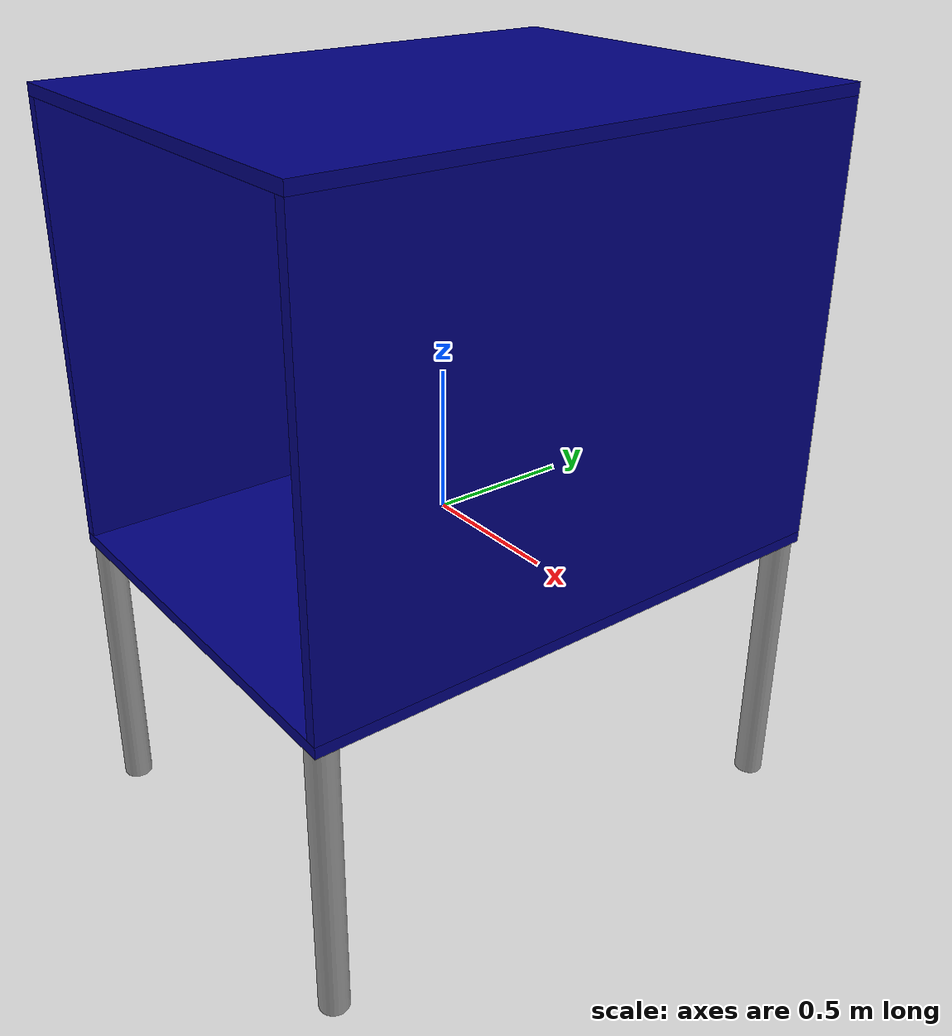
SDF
<?xml version='1.0'?>
<sdf version='1.6'>
  <model name='B_tube'>
    <link name='link_0'>
      <inertial>
        <mass>1</mass>
        <inertia>
          <ixx>0.145833</ixx>
          <ixy>0</ixy>
          <ixz>0</ixz>
          <iyy>0.145833</iyy>
          <iyz>0</iyz>
          <izz>0.125</izz>
        </inertia>
        <pose frame=''>0 0 0 0 -0 0</pose>
      </inertial>
      <pose frame=''>-0.7 -0.95 -0.645 0 -0 0</pose>
      <gravity>1</gravity>
      <self_collide>0</self_collide>
      <kinematic>0</kinematic>
      <enable_wind>0</enable_wind>
      <visual name='visual'>
        <pose frame=''>0 0 0 0 -0 0</pose>
        <geometry>
          <cylinder>
            <radius>0.05</radius>
            <length>1</length>
          </cylinder>
        </geometry>
        <material>
          <lighting>1</lighting>
          <script>
            <uri>file://media/materials/scripts/gazebo.material</uri>
            <name>Gazebo/Grey</name>
          </script>
          <shader type='vertex'>
            <normal_map>__default__</normal_map>
          </shader>
          <ambient>0.3 0.3 0.3 1</ambient>
          <diffuse>0.7 0.7 0.7 1</diffuse>
          <specular>0.01 0.01 0.01 1</specular>
          <emissive>0 0 0 1</emissive>
        </material>
        <transparency>0</transparency>
        <cast_shadows>1</cast_shadows>
      </visual>
      <collision name='collision'>
        <laser_retro>0</laser_retro>
        <max_contacts>10</max_contacts>
        <pose frame=''>0 0 0 0 -0 0</pose>
        <geometry>
          <cylinder>
            <radius>0.05</radius>
            <length>1</length>
          </cylinder>
        </geometry>
        <surface>
          <friction>
            <ode>
              <mu>1</mu>
              <mu2>1</mu2>
              <fdir1>0 0 0</fdir1>
              <slip1>0</slip1>
              <slip2>0</slip2>
            </ode>
            <torsional>
              <coefficient>1</coefficient>
              <patch_radius>0</patch_radius>
              <surface_radius>0</surface_radius>
              <use_patch_radius>1</use_patch_radius>
              <ode>
                <slip>0</slip>
              </ode>
            </torsional>
          </friction>
          <bounce>
            <restitution_coefficient>0</restitution_coefficient>
            <threshold>1e+06</threshold>
          </bounce>
          <contact>
            <collide_without_contact>0</collide_without_contact>
            <collide_without_contact_bitmask>1</collide_without_contact_bitmask>
            <collide_bitmask>1</collide_bitmask>
            <ode>
              <soft_cfm>0</soft_cfm>
              <soft_erp>0.2</soft_erp>
              <kp>1e+13</kp>
              <kd>1</kd>
              <max_vel>0.01</max_vel>
              <min_depth>0</min_depth>
            </ode>
            <bullet>
              <split_impulse>1</split_impulse>
              <split_impulse_penetration_threshold>-0.01</split_impulse_penetration_threshold>
              <soft_cfm>0</soft_cfm>
              <soft_erp>0.2</soft_erp>
              <kp>1e+13</kp>
              <kd>1</kd>
            </bullet>
          </contact>
        </surface>
      </collision>
    </link>
    <link name='link_0_clone'>
      <inertial>
        <mass>1</mass>
        <inertia>
          <ixx>0.145833</ixx>
          <ixy>0</ixy>
          <ixz>0</ixz>
          <iyy>0.145833</iyy>
          <iyz>0</iyz>
          <izz>0.125</izz>
        </inertia>
        <pose frame=''>0 0 0 0 -0 0</pose>
      </inertial>
      <pose frame=''>0.7 -0.95 -0.645 0 -0 0</pose>
      <gravity>1</gravity>
      <self_collide>0</self_collide>
      <kinematic>0</kinematic>
      <enable_wind>0</enable_wind>
      <visual name='visual'>
        <pose frame=''>0 0 0 0 -0 0</pose>
        <geometry>
          <cylinder>
            <radius>0.05</radius>
            <length>1</length>
          </cylinder>
        </geometry>
        <material>
          <lighting>1</lighting>
          <script>
            <uri>file://media/materials/scripts/gazebo.material</uri>
            <name>Gazebo/Grey</name>
          </script>
          <shader type='vertex'>
            <normal_map>__default__</normal_map>
          </shader>
          <ambient>0.3 0.3 0.3 1</ambient>
          <diffuse>0.7 0.7 0.7 1</diffuse>
          <specular>0.01 0.01 0.01 1</specular>
          <emissive>0 0 0 1</emissive>
        </material>
        <transparency>0</transparency>
        <cast_shadows>1</cast_shadows>
      </visual>
      <collision name='collision'>
        <laser_retro>0</laser_retro>
        <max_contacts>10</max_contacts>
        <pose frame=''>0 0 0 0 -0 0</pose>
        <geometry>
          <cylinder>
            <radius>0.05</radius>
            <length>1</length>
          </cylinder>
        </geometry>
        <surface>
          <friction>
            <ode>
              <mu>1</mu>
              <mu2>1</mu2>
              <fdir1>0 0 0</fdir1>
              <slip1>0</slip1>
              <slip2>0</slip2>
            </ode>
            <torsional>
              <coefficient>1</coefficient>
              <patch_radius>0</patch_radius>
              <surface_radius>0</surface_radius>
              <use_patch_radius>1</use_patch_radius>
              <ode>
                <slip>0</slip>
              </ode>
            </torsional>
          </friction>
          <bounce>
            <restitution_coefficient>0</restitution_coefficient>
            <threshold>1e+06</threshold>
          </bounce>
          <contact>
            <collide_without_contact>0</collide_without_contact>
            <collide_without_contact_bitmask>1</collide_without_contact_bitmask>
            <collide_bitmask>1</collide_bitmask>
            <ode>
              <soft_cfm>0</soft_cfm>
              <soft_erp>0.2</soft_erp>
              <kp>1e+13</kp>
              <kd>1</kd>
              <max_vel>0.01</max_vel>
              <min_depth>0</min_depth>
            </ode>
            <bullet>
              <split_impulse>1</split_impulse>
              <split_impulse_penetration_threshold>-0.01</split_impulse_penetration_threshold>
              <soft_cfm>0</soft_cfm>
              <soft_erp>0.2</soft_erp>
              <kp>1e+13</kp>
              <kd>1</kd>
            </bullet>
          </contact>
        </surface>
      </collision>
    </link>
    <link name='link_0_clone_0'>
      <inertial>
        <mass>1</mass>
        <inertia>
          <ixx>0.145833</ixx>
          <ixy>0</ixy>
          <ixz>0</ixz>
          <iyy>0.145833</iyy>
          <iyz>0</iyz>
          <izz>0.125</izz>
        </inertia>
        <pose frame=''>0 0 0 0 -0 0</pose>
      </inertial>
      <pose frame=''>-0.7 0.95 -0.645 0 -0 0</pose>
      <gravity>1</gravity>
      <self_collide>0</self_collide>
      <kinematic>0</kinematic>
      <enable_wind>0</enable_wind>
      <visual name='visual'>
        <pose frame=''>0 0 0 0 -0 0</pose>
        <geometry>
          <cylinder>
            <radius>0.05</radius>
            <length>1</length>
          </cylinder>
        </geometry>
        <material>
          <lighting>1</lighting>
          <script>
            <uri>file://media/materials/scripts/gazebo.material</uri>
            <name>Gazebo/Grey</name>
          </script>
          <shader type='vertex'>
            <normal_map>__default__</normal_map>
          </shader>
          <ambient>0.3 0.3 0.3 1</ambient>
          <diffuse>0.7 0.7 0.7 1</diffuse>
          <specular>0.01 0.01 0.01 1</specular>
          <emissive>0 0 0 1</emissive>
        </material>
        <transparency>0</transparency>
        <cast_shadows>1</cast_shadows>
      </visual>
      <collision name='collision'>
        <laser_retro>0</laser_retro>
        <max_contacts>10</max_contacts>
        <pose frame=''>0 0 0 0 -0 0</pose>
        <geometry>
          <cylinder>
            <radius>0.05</radius>
            <length>1</length>
          </cylinder>
        </geometry>
        <surface>
          <friction>
            <ode>
              <mu>1</mu>
              <mu2>1</mu2>
              <fdir1>0 0 0</fdir1>
              <slip1>0</slip1>
              <slip2>0</slip2>
            </ode>
            <torsional>
              <coefficient>1</coefficient>
              <patch_radius>0</patch_radius>
              <surface_radius>0</surface_radius>
              <use_patch_radius>1</use_patch_radius>
              <ode>
                <slip>0</slip>
              </ode>
            </torsional>
          </friction>
          <bounce>
            <restitution_coefficient>0</restitution_coefficient>
            <threshold>1e+06</threshold>
          </bounce>
          <contact>
            <collide_without_contact>0</collide_without_contact>
            <collide_without_contact_bitmask>1</collide_without_contact_bitmask>
            <collide_bitmask>1</collide_bitmask>
            <ode>
              <soft_cfm>0</soft_cfm>
              <soft_erp>0.2</soft_erp>
              <kp>1e+13</kp>
              <kd>1</kd>
              <max_vel>0.01</max_vel>
              <min_depth>0</min_depth>
            </ode>
            <bullet>
              <split_impulse>1</split_impulse>
              <split_impulse_penetration_threshold>-0.01</split_impulse_penetration_threshold>
              <soft_cfm>0</soft_cfm>
              <soft_erp>0.2</soft_erp>
              <kp>1e+13</kp>
              <kd>1</kd>
            </bullet>
          </contact>
        </surface>
      </collision>
    </link>
    <link name='link_0_clone_1'>
      <inertial>
        <mass>1</mass>
        <inertia>
          <ixx>0.145833</ixx>
          <ixy>0</ixy>
          <ixz>0</ixz>
          <iyy>0.145833</iyy>
          <iyz>0</iyz>
          <izz>0.125</izz>
        </inertia>
        <pose frame=''>0 0 0 0 -0 0</pose>
      </inertial>
      <pose frame=''>0.7 0.95 -0.645 0 -0 0</pose>
      <gravity>1</gravity>
      <self_collide>0</self_collide>
      <kinematic>0</kinematic>
      <enable_wind>0</enable_wind>
      <visual name='visual'>
        <pose frame=''>0 0 0 0 -0 0</pose>
        <geometry>
          <cylinder>
            <radius>0.05</radius>
            <length>1</length>
          </cylinder>
        </geometry>
        <material>
          <lighting>1</lighting>
          <script>
            <uri>file://media/materials/scripts/gazebo.material</uri>
            <name>Gazebo/Grey</name>
          </script>
          <shader type='vertex'>
            <normal_map>__default__</normal_map>
          </shader>
          <ambient>0.3 0.3 0.3 1</ambient>
          <diffuse>0.7 0.7 0.7 1</diffuse>
          <specular>0.01 0.01 0.01 1</specular>
          <emissive>0 0 0 1</emissive>
        </material>
        <transparency>0</transparency>
        <cast_shadows>1</cast_shadows>
      </visual>
      <collision name='collision'>
        <laser_retro>0</laser_retro>
        <max_contacts>10</max_contacts>
        <pose frame=''>0 0 0 0 -0 0</pose>
        <geometry>
          <cylinder>
            <radius>0.05</radius>
            <length>1</length>
          </cylinder>
        </geometry>
        <surface>
          <friction>
            <ode>
              <mu>1</mu>
              <mu2>1</mu2>
              <fdir1>0 0 0</fdir1>
              <slip1>0</slip1>
              <slip2>0</slip2>
            </ode>
            <torsional>
              <coefficient>1</coefficient>
              <patch_radius>0</patch_radius>
              <surface_radius>0</surface_radius>
              <use_patch_radius>1</use_patch_radius>
              <ode>
                <slip>0</slip>
              </ode>
            </torsional>
          </friction>
          <bounce>
            <restitution_coefficient>0</restitution_coefficient>
            <threshold>1e+06</threshold>
          </bounce>
          <contact>
            <collide_without_contact>0</collide_without_contact>
            <collide_without_contact_bitmask>1</collide_without_contact_bitmask>
            <collide_bitmask>1</collide_bitmask>
            <ode>
              <soft_cfm>0</soft_cfm>
              <soft_erp>0.2</soft_erp>
              <kp>1e+13</kp>
              <kd>1</kd>
              <max_vel>0.01</max_vel>
              <min_depth>0</min_depth>
            </ode>
            <bullet>
              <split_impulse>1</split_impulse>
              <split_impulse_penetration_threshold>-0.01</split_impulse_penetration_threshold>
              <soft_cfm>0</soft_cfm>
              <soft_erp>0.2</soft_erp>
              <kp>1e+13</kp>
              <kd>1</kd>
            </bullet>
          </contact>
        </surface>
      </collision>
    </link>
    <link name='link_1'>
      <inertial>
        <mass>1</mass>
        <inertia>
          <ixx>0.166667</ixx>
          <ixy>0</ixy>
          <ixz>0</ixz>
          <iyy>0.166667</iyy>
          <iyz>0</iyz>
          <izz>0.166667</izz>
        </inertia>
        <pose frame=''>0 0 0 0 -0 0</pose>
      </inertial>
      <pose frame=''>-0 -0 -0.125 0 -0 0</pose>
      <gravity>1</gravity>
      <self_collide>0</self_collide>
      <kinematic>0</kinematic>
      <enable_wind>0</enable_wind>
      <visual name='visual'>
        <pose frame=''>0 0 0 0 -0 0</pose>
        <geometry>
          <box>
            <size>1.5 2 0.04</size>
          </box>
        </geometry>
        <material>
          <lighting>1</lighting>
          <script>
            <uri>file://media/materials/scripts/gazebo.material</uri>
            <name>Gazebo/Grey</name>
          </script>
          <shader type='vertex'>
            <normal_map>__default__</normal_map>
          </shader>
          <ambient>0 0 0.5 1</ambient>
          <diffuse>0.7 0.7 0.7 1</diffuse>
          <specular>0.01 0.01 0.01 1</specular>
          <emissive>0 0 0 1</emissive>
        </material>
        <transparency>0</transparency>
        <cast_shadows>1</cast_shadows>
      </visual>
      <collision name='collision'>
        <laser_retro>0</laser_retro>
        <max_contacts>10</max_contacts>
        <pose frame=''>0 0 0 0 -0 0</pose>
        <geometry>
          <box>
            <size>1.5 2 0.04</size>
          </box>
        </geometry>
        <surface>
          <friction>
            <ode>
              <mu>1</mu>
              <mu2>1</mu2>
              <fdir1>0 0 0</fdir1>
              <slip1>0</slip1>
              <slip2>0</slip2>
            </ode>
            <torsional>
              <coefficient>1</coefficient>
              <patch_radius>0</patch_radius>
              <surface_radius>0</surface_radius>
              <use_patch_radius>1</use_patch_radius>
              <ode>
                <slip>0</slip>
              </ode>
            </torsional>
          </friction>
          <bounce>
            <restitution_coefficient>0</restitution_coefficient>
            <threshold>1e+06</threshold>
          </bounce>
          <contact>
            <collide_without_contact>0</collide_without_contact>
            <collide_without_contact_bitmask>1</collide_without_contact_bitmask>
            <collide_bitmask>1</collide_bitmask>
            <ode>
              <soft_cfm>0</soft_cfm>
              <soft_erp>0.2</soft_erp>
              <kp>1e+13</kp>
              <kd>1</kd>
              <max_vel>0.01</max_vel>
              <min_depth>0</min_depth>
            </ode>
            <bullet>
              <split_impulse>1</split_impulse>
              <split_impulse_penetration_threshold>-0.01</split_impulse_penetration_threshold>
              <soft_cfm>0</soft_cfm>
              <soft_erp>0.2</soft_erp>
              <kp>1e+13</kp>
              <kd>1</kd>
            </bullet>
          </contact>
        </surface>
      </collision>
    </link>
    <link name='link_1_clone'>
      <inertial>
        <mass>1</mass>
        <inertia>
          <ixx>0.166667</ixx>
          <ixy>0</ixy>
          <ixz>0</ixz>
          <iyy>0.166667</iyy>
          <iyz>0</iyz>
          <izz>0.166667</izz>
        </inertia>
        <pose frame=''>0 0 0 0 -0 0</pose>
      </inertial>
      <pose frame=''>0 -0 1.415 0 -0 0</pose>
      <gravity>1</gravity>
      <self_collide>0</self_collide>
      <kinematic>0</kinematic>
      <enable_wind>0</enable_wind>
      <visual name='visual'>
        <pose frame=''>0 0 0 0 -0 0</pose>
        <geometry>
          <box>
            <size>1.5 2 0.04</size>
          </box>
        </geometry>
        <material>
          <lighting>1</lighting>
          <script>
            <uri>file://media/materials/scripts/gazebo.material</uri>
            <name>Gazebo/Grey</name>
          </script>
          <shader type='vertex'>
            <normal_map>__default__</normal_map>
          </shader>
          <ambient>0 0 0.5 1</ambient>
          <diffuse>0.7 0.7 0.7 1</diffuse>
          <specular>0.01 0.01 0.01 1</specular>
          <emissive>0 0 0 1</emissive>
        </material>
        <transparency>0</transparency>
        <cast_shadows>1</cast_shadows>
      </visual>
      <collision name='collision'>
        <laser_retro>0</laser_retro>
        <max_contacts>10</max_contacts>
        <pose frame=''>0 0 0 0 -0 0</pose>
        <geometry>
          <box>
            <size>1.5 2 0.04</size>
          </box>
        </geometry>
        <surface>
          <friction>
            <ode>
              <mu>1</mu>
              <mu2>1</mu2>
              <fdir1>0 0 0</fdir1>
              <slip1>0</slip1>
              <slip2>0</slip2>
            </ode>
            <torsional>
              <coefficient>1</coefficient>
              <patch_radius>0</patch_radius>
              <surface_radius>0</surface_radius>
              <use_patch_radius>1</use_patch_radius>
              <ode>
                <slip>0</slip>
              </ode>
            </torsional>
          </friction>
          <bounce>
            <restitution_coefficient>0</restitution_coefficient>
            <threshold>1e+06</threshold>
          </bounce>
          <contact>
            <collide_without_contact>0</collide_without_contact>
            <collide_without_contact_bitmask>1</collide_without_contact_bitmask>
            <collide_bitmask>1</collide_bitmask>
            <ode>
              <soft_cfm>0</soft_cfm>
              <soft_erp>0.2</soft_erp>
              <kp>1e+13</kp>
              <kd>1</kd>
              <max_vel>0.01</max_vel>
              <min_depth>0</min_depth>
            </ode>
            <bullet>
              <split_impulse>1</split_impulse>
              <split_impulse_penetration_threshold>-0.01</split_impulse_penetration_threshold>
              <soft_cfm>0</soft_cfm>
              <soft_erp>0.2</soft_erp>
              <kp>1e+13</kp>
              <kd>1</kd>
            </bullet>
          </contact>
        </surface>
      </collision>
    </link>
    <link name='link_1_clone_0'>
      <inertial>
        <mass>1</mass>
        <inertia>
          <ixx>0.166667</ixx>
          <ixy>0</ixy>
          <ixz>0</ixz>
          <iyy>0.166667</iyy>
          <iyz>0</iyz>
          <izz>0.166667</izz>
        </inertia>
        <pose frame=''>0 0 0 0 -0 0</pose>
      </inertial>
      <pose frame=''>-0.73 0 0.645 0 1.57 0</pose>
      <gravity>1</gravity>
      <self_collide>0</self_collide>
      <kinematic>0</kinematic>
      <enable_wind>0</enable_wind>
      <visual name='visual'>
        <pose frame=''>0 0 0 0 -0 0</pose>
        <geometry>
          <box>
            <size>1.5 2 0.04</size>
          </box>
        </geometry>
        <material>
          <lighting>1</lighting>
          <script>
            <uri>file://media/materials/scripts/gazebo.material</uri>
            <name>Gazebo/Grey</name>
          </script>
          <shader type='vertex'>
            <normal_map>__default__</normal_map>
          </shader>
          <ambient>0 0 0.5 1</ambient>
          <diffuse>0.7 0.7 0.7 1</diffuse>
          <specular>0.01 0.01 0.01 1</specular>
          <emissive>0 0 0 1</emissive>
        </material>
        <transparency>0</transparency>
        <cast_shadows>1</cast_shadows>
      </visual>
      <collision name='collision'>
        <laser_retro>0</laser_retro>
        <max_contacts>10</max_contacts>
        <pose frame=''>0 0 0 0 -0 0</pose>
        <geometry>
          <box>
            <size>1.5 2 0.04</size>
          </box>
        </geometry>
        <surface>
          <friction>
            <ode>
              <mu>1</mu>
              <mu2>1</mu2>
              <fdir1>0 0 0</fdir1>
              <slip1>0</slip1>
              <slip2>0</slip2>
            </ode>
            <torsional>
              <coefficient>1</coefficient>
              <patch_radius>0</patch_radius>
              <surface_radius>0</surface_radius>
              <use_patch_radius>1</use_patch_radius>
              <ode>
                <slip>0</slip>
              </ode>
            </torsional>
          </friction>
          <bounce>
            <restitution_coefficient>0</restitution_coefficient>
            <threshold>1e+06</threshold>
          </bounce>
          <contact>
            <collide_without_contact>0</collide_without_contact>
            <collide_without_contact_bitmask>1</collide_without_contact_bitmask>
            <collide_bitmask>1</collide_bitmask>
            <ode>
              <soft_cfm>0</soft_cfm>
              <soft_erp>0.2</soft_erp>
              <kp>1e+13</kp>
              <kd>1</kd>
              <max_vel>0.01</max_vel>
              <min_depth>0</min_depth>
            </ode>
            <bullet>
              <split_impulse>1</split_impulse>
              <split_impulse_penetration_threshold>-0.01</split_impulse_penetration_threshold>
              <soft_cfm>0</soft_cfm>
              <soft_erp>0.2</soft_erp>
              <kp>1e+13</kp>
              <kd>1</kd>
            </bullet>
          </contact>
        </surface>
      </collision>
    </link>
    <link name='link_1_clone_0_clone'>
      <inertial>
        <mass>1</mass>
        <inertia>
          <ixx>0.166667</ixx>
          <ixy>0</ixy>
          <ixz>0</ixz>
          <iyy>0.166667</iyy>
          <iyz>0</iyz>
          <izz>0.166667</izz>
        </inertia>
        <pose frame=''>0 0 0 0 -0 0</pose>
      </inertial>
      <pose frame=''>0.73 0 0.645 0 1.57 0</pose>
      <gravity>1</gravity>
      <self_collide>0</self_collide>
      <kinematic>0</kinematic>
      <enable_wind>0</enable_wind>
      <visual name='visual'>
        <pose frame=''>0 0 0 0 -0 0</pose>
        <geometry>
          <box>
            <size>1.5 2 0.04</size>
          </box>
        </geometry>
        <material>
          <lighting>1</lighting>
          <script>
            <uri>file://media/materials/scripts/gazebo.material</uri>
            <name>Gazebo/Grey</name>
          </script>
          <shader type='vertex'>
            <normal_map>__default__</normal_map>
          </shader>
          <ambient>0 0 0.5 1</ambient>
          <diffuse>0.7 0.7 0.7 1</diffuse>
          <specular>0.01 0.01 0.01 1</specular>
          <emissive>0 0 0 1</emissive>
        </material>
        <transparency>0</transparency>
        <cast_shadows>1</cast_shadows>
      </visual>
      <collision name='collision'>
        <laser_retro>0</laser_retro>
        <max_contacts>10</max_contacts>
        <pose frame=''>0 0 0 0 -0 0</pose>
        <geometry>
          <box>
            <size>1.5 2 0.04</size>
          </box>
        </geometry>
        <surface>
          <friction>
            <ode>
              <mu>1</mu>
              <mu2>1</mu2>
              <fdir1>0 0 0</fdir1>
              <slip1>0</slip1>
              <slip2>0</slip2>
            </ode>
            <torsional>
              <coefficient>1</coefficient>
              <patch_radius>0</patch_radius>
              <surface_radius>0</surface_radius>
              <use_patch_radius>1</use_patch_radius>
              <ode>
                <slip>0</slip>
              </ode>
            </torsional>
          </friction>
          <bounce>
            <restitution_coefficient>0</restitution_coefficient>
            <threshold>1e+06</threshold>
          </bounce>
          <contact>
            <collide_without_contact>0</collide_without_contact>
            <collide_without_contact_bitmask>1</collide_without_contact_bitmask>
            <collide_bitmask>1</collide_bitmask>
            <ode>
              <soft_cfm>0</soft_cfm>
              <soft_erp>0.2</soft_erp>
              <kp>1e+13</kp>
              <kd>1</kd>
              <max_vel>0.01</max_vel>
              <min_depth>0</min_depth>
            </ode>
            <bullet>
              <split_impulse>1</split_impulse>
              <split_impulse_penetration_threshold>-0.01</split_impulse_penetration_threshold>
              <soft_cfm>0</soft_cfm>
              <soft_erp>0.2</soft_erp>
              <kp>1e+13</kp>
              <kd>1</kd>
            </bullet>
          </contact>
        </surface>
      </collision>
    </link>
    <joint name='link_1_JOINT_0' type='fixed'>
      <parent>link_1</parent>
      <child>link_1_clone_0_clone</child>
      <pose frame=''>0 0 0 0 -0 0</pose>
      <physics>
        <ode>
          <limit>
            <cfm>0</cfm>
            <erp>0.2</erp>
          </limit>
          <suspension>
            <cfm>0</cfm>
            <erp>0.2</erp>
          </suspension>
        </ode>
      </physics>
    </joint>
    <joint name='link_1_JOINT_1' type='fixed'>
      <parent>link_1</parent>
      <child>link_1_clone_0</child>
      <pose frame=''>0 0 0 0 -0 0</pose>
      <physics>
        <ode>
          <limit>
            <cfm>0</cfm>
            <erp>0.2</erp>
          </limit>
          <suspension>
            <cfm>0</cfm>
            <erp>0.2</erp>
          </suspension>
        </ode>
      </physics>
    </joint>
    <joint name='link_1_JOINT_2' type='fixed'>
      <parent>link_1</parent>
      <child>link_1_clone</child>
      <pose frame=''>0 0 0 0 -0 0</pose>
      <physics>
        <ode>
          <limit>
            <cfm>0</cfm>
            <erp>0.2</erp>
          </limit>
          <suspension>
            <cfm>0</cfm>
            <erp>0.2</erp>
          </suspension>
        </ode>
      </physics>
    </joint>
    <joint name='link_1_JOINT_4' type='fixed'>
      <parent>link_1</parent>
      <child>link_0_clone_0</child>
      <pose frame=''>0 0 0 0 -0 0</pose>
      <physics>
        <ode>
          <limit>
            <cfm>0</cfm>
            <erp>0.2</erp>
          </limit>
          <suspension>
            <cfm>0</cfm>
            <erp>0.2</erp>
          </suspension>
        </ode>
      </physics>
    </joint>
    <joint name='link_1_JOINT_5' type='fixed'>
      <parent>link_1</parent>
      <child>link_0_clone_1</child>
      <pose frame=''>0 0 0 0 -0 0</pose>
      <physics>
        <ode>
          <limit>
            <cfm>0</cfm>
            <erp>0.2</erp>
          </limit>
          <suspension>
            <cfm>0</cfm>
            <erp>0.2</erp>
          </suspension>
        </ode>
      </physics>
    </joint>
    <joint name='link_1_JOINT_6' type='fixed'>
      <parent>link_1</parent>
      <child>link_0_clone</child>
      <pose frame=''>0 0 0 0 -0 0</pose>
      <physics>
        <ode>
          <limit>
            <cfm>0</cfm>
            <erp>0.2</erp>
          </limit>
          <suspension>
            <cfm>0</cfm>
            <erp>0.2</erp>
          </suspension>
        </ode>
      </physics>
    </joint>
    <joint name='link_1_JOINT_7' type='fixed'>
      <parent>link_1</parent>
      <child>link_0</child>
      <pose frame=''>0 0 0 0 -0 0</pose>
      <physics>
        <ode>
          <limit>
            <cfm>0</cfm>
            <erp>0.2</erp>
          </limit>
          <suspension>
            <cfm>0</cfm>
            <erp>0.2</erp>
          </suspension>
        </ode>
      </physics>
    </joint>
    <static>0</static>
    <allow_auto_disable>1</allow_auto_disable>
  </model>
</sdf>
